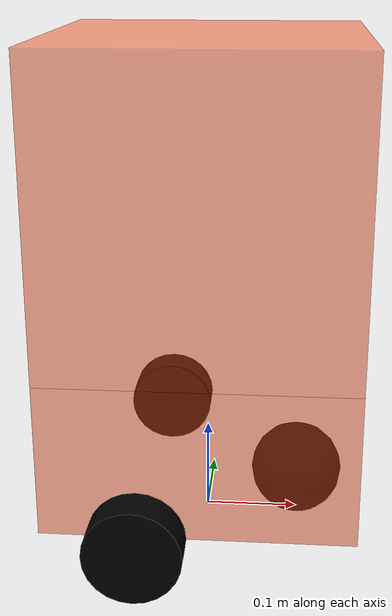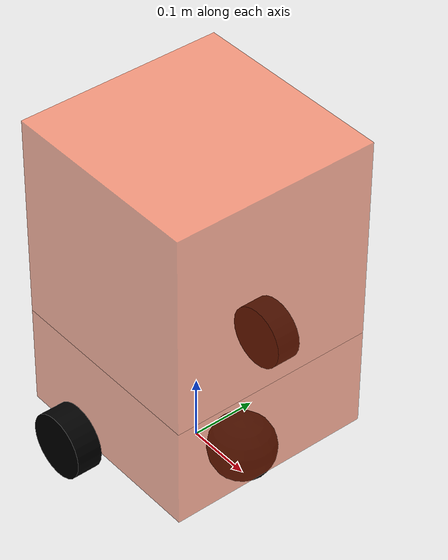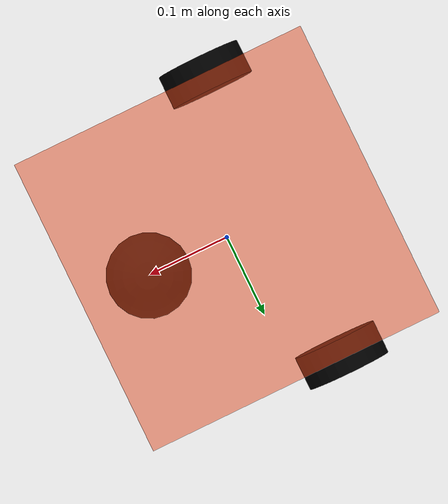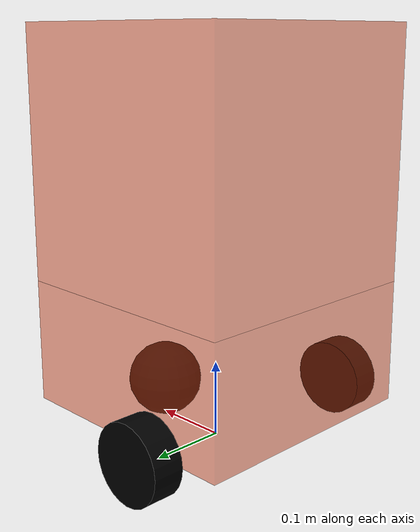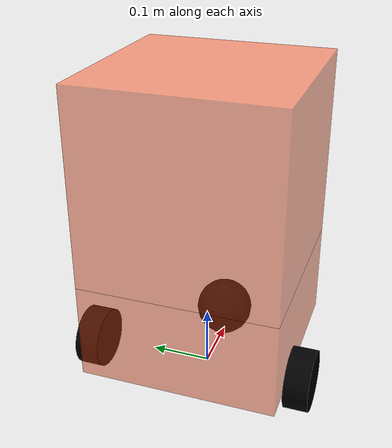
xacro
<?xml version="1.0"?>
<robot xmlns:xacro="http://www.ros.org/wiki/xacro">

    <xacro:include filename="inertial_macros.xacro"/>

	<!-- COLORS -->

    <material name="orange">
    	<color rgba="1 0.3 0.1 0.5"/>
    </material>

    <material name="black">
    	<color rgba="0 0 0 1"/>
    </material>

    <!-- BASE_FOOTPRINT -->

	<link name="base_footprint">
	</link>

	<!-- BASE_LINK -->

    <link name="base_link">
		<visual>
    	    <origin xyz="0 0 0"/>
    	    <geometry>
    	    	<box size="0.32 0.32 0.16"/>
    	    </geometry>
    	    <material name="orange"/>
    	</visual>
    	<collision>
    	    <origin xyz="0 0 0"/>
    	    <geometry>
    	    	<box size="0.32 0.32 0.16"/>
    	    </geometry>
    	</collision>
    	<xacro:inertial_box mass="0.5" x="0.32" y="0.32" z="0.16">
    	    <origin xyz="0 0 0" rpy="0 0 0"/>
    	</xacro:inertial_box>
    </link>

    <gazebo reference="base_link">
        <material>Gazebo/Orange</material>
    </gazebo>

    <joint name="base_link_joint" type="fixed">
    	<parent link="base_footprint"/>
    	<child link="base_link"/>
    	<origin xyz="0 0 0.13"/>
    </joint>

	<!-- CAMERA_BOX -->

	<link name="camera_box">
		<visual>
			<origin xyz="0 0 0"/>
			<geometry>
				<box size="0.32 0.32 0.32"/>
			</geometry>
			<material name="orange"/>
		</visual>
		<collision>
			<origin xyz="0 0 0"/>
			<geometry>
				<box size="0.32 0.32 0.32"/>
			</geometry>
		</collision>
	</link>

	<gazebo reference="camera_box">
        <material>Gazebo/Orange</material>
    </gazebo>

    <joint name="camera_box_joint" type="fixed">
    	<parent link="base_link"/>
    	<child link="camera_box"/>
    	<origin xyz="0 0 0.24"/>
    </joint>

    <!-- LEFT_WHEEL -->

    <link name="left_wheel">
    	<visual>
    	    <geometry>
    	        <cylinder radius="0.05" length="0.04"/>
    	    </geometry>
    	    <material name="black"/>
    	</visual>
    	<collision>
    	    <geometry>
    	        <cylinder radius="0.05" length="0.04"/>
    	    </geometry>
    	</collision>
    	<xacro:inertial_cylinder mass="0.1" length="0.04" radius="0.05">
    	    <origin xyz="0 0 0" rpy="0 0 0"/>
    	</xacro:inertial_cylinder>
    </link>

    <gazebo reference="left_wheel">
        <material>Gazebo/Black</material>
    </gazebo>

    <joint name="left_wheel_joint" type="continuous">
    	<parent link="base_link"/>
    	<child link="left_wheel"/>
    	<origin xyz="-0.06 0.18 -0.08" rpy="-${pi/2} 0 0"/>
    	<axis xyz="0 0 1"/>
    </joint>

    <!-- RIGHT_WHEEL -->

    <link name="right_wheel">
    	<visual>
    	    <geometry>
    	        <cylinder radius="0.05" length="0.04"/>
    	    </geometry>
    	    <material name="black"/>
    	</visual>
    	<collision>
    	    <geometry>
    	        <cylinder radius="0.05" length="0.04"/>
    	    </geometry>
    	</collision>
    	<xacro:inertial_cylinder mass="0.1" length="0.04" radius="0.05">
    	    <origin xyz="0 0 0" rpy="0 0 0"/>
    	</xacro:inertial_cylinder>
    </link>

    <gazebo reference="right_wheel">
        <material>Gazebo/Black</material>
    </gazebo>

    <joint name="right_wheel_joint" type="continuous">
    	<parent link="base_link"/>
    	<child link="right_wheel"/>
    	<origin xyz="-0.06 -0.18 -0.08" rpy="${pi/2} 0 0"/>
    	<axis xyz="0 0 -1"/>
    </joint>

    <!-- CASTER WHEEL -->

    <link name="caster_wheel">
        <visual>
            <geometry>
    	        <sphere radius="0.05"/>
    	    </geometry>
    	    <material name="black"/>
    	</visual>
    	<collision>
            <geometry>
    	        <sphere radius="0.05"/>
    	    </geometry>
    	</collision>
    	<xacro:inertial_sphere mass="0.1" radius="0.05">
    	    <origin xyz="0 0 0" rpy="0 0 0"/>
    	</xacro:inertial_sphere>
    </link>

    <gazebo reference="caster_wheel">
        <material>Gazebo/Black</material>
        <mu1 value="0.001"/>
        <mu2 value="0.001"/>
    </gazebo>

    <joint name="caster_wheel_joint" type="fixed">
        <parent link="base_link"/>
        <child link="caster_wheel"/>
        <origin xyz="0.1 0 -0.08"/>
    </joint>

</robot>
